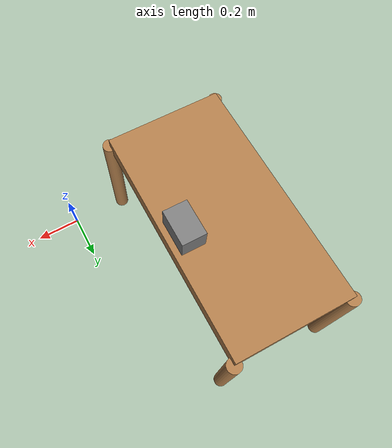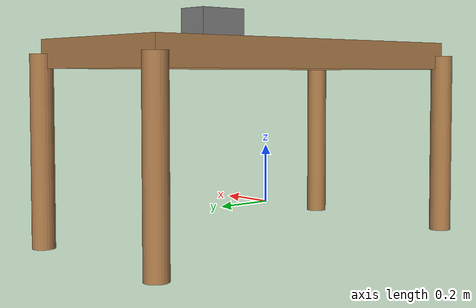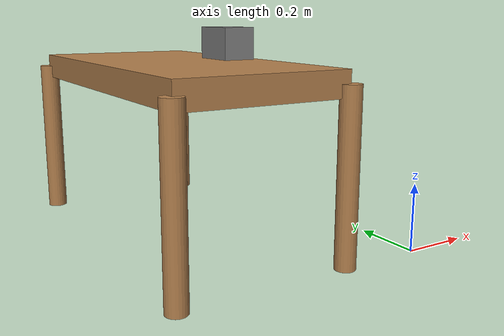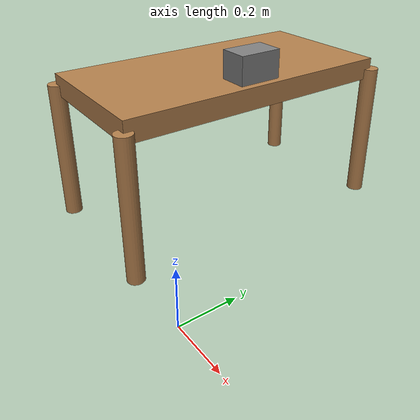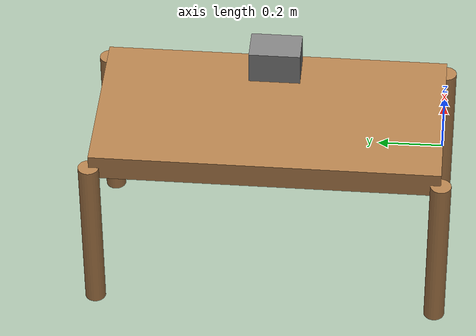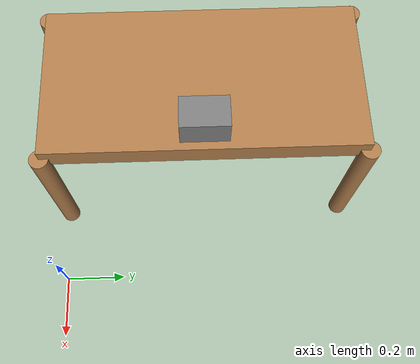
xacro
<?xml version="1.0" ?>
<robot name="camera" xmlns:xacro="http://wiki.ros.org/xacro">

    <link name="world" />

    <xacro:include filename="$(find camera_zoom_ros)/urdf/resources/calc_inertial.xacro"/>
    <xacro:include filename="$(find camera_zoom_ros)/urdf/resources/table.xacro"/>

    <joint name="camera_joint" type="fixed">
        <origin rpy="0 0 0" xyz="-0.325 0.5 0.585"/>
        <parent link="world"/>
        <child link="camera"/>
    </joint>

    <link name="camera">
        <collision>
            <origin rpy="0 0 0" xyz="0 0 0"/>
            <geometry>
                <box size="0.1 0.15 0.1"/>
            </geometry>
        </collision>
        <visual>
            <origin rpy="0 0 0" xyz="0 0 0"/>
            <geometry>
                <box size="0.1 0.15 0.1"/>
            </geometry>
            <material name="grey">
                <color rgba="0.5 0.5 0.5 1"/>
            </material>
        </visual>
        <inertial>
            <origin rpy="0 0 0" xyz="0 0 0"/>
            <mass value="0.1"/>
            <inertia ixx="0.0001" ixy="0.0" ixz="0.0" iyy="0.0001" iyz="0.0" izz="0.0001"/>
        </inertial>
    </link>

    <joint name="camera_optical_joint" type="fixed">
        <origin rpy="0 0 0" xyz="0 0 0"/>
        <parent link="camera"/>
        <child link="camera_frame_optical"/>
    </joint>

    <link name="camera_frame_optical"/>

    <gazebo reference="camera">
        <material>Gazebo/Grey</material>
        <sensor name="camera1" type="camera">
            <visualize>true</visualize>
            <update_rate>20</update_rate>
            <camera>
                <horizontal_fov>1.2</horizontal_fov>
                <image>
                    <width>640</width>
                    <height>480</height>
                    <format>R8G8B8</format>
                </image>
                <clip>
                    <near>0.05</near>
                    <far>30</far>
                </clip>
            </camera>
            <plugin filename="libgazebo_ros_camera.so" name="camera_controller">
                <alwaysOn>true</alwaysOn>
                <updateRate>20.0</updateRate>
                <cameraName>camera1</cameraName>
                <imageTopicName>/camera1/image_raw</imageTopicName>
                <cameraInfoTopicName>/camera1/camera_info</cameraInfoTopicName>
                <frameName>camera_frame_optical</frameName>
            </plugin>
        </sensor>
    </gazebo>

</robot>

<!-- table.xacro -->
<robot xmlns:xacro="http://ros.org/wiki/xacro">

  <!-- Macro for table leg -->
  <xacro:macro name="table_leg" params="name x y z">
    <link name="${name}">
      <visual>
        <geometry>
          <cylinder radius="${x/2}" length="${z}"/>
        </geometry>
        <material name="wood"/>
      </visual>
      <collision>
        <geometry>
          <cylinder radius="${x/2}" length="${z}"/>
        </geometry>
      </collision>
      <xacro:inertial_cylinder mass="0.1" length="${z}" radius="${x/2}">
        <origin xyz="0 0 0" rpy="0 0 0"/>
      </xacro:inertial_cylinder>
    </link>

    <gazebo reference="${name}">
      <material>Gazebo/Gray</material>
    </gazebo>
  </xacro:macro>

  <!-- Macro for table top -->
  <xacro:macro name="table_top" params="name length width height">
    <link name="${name}">
      <visual>
        <geometry>
          <box size="${length} ${width} ${height}"/>
        </geometry>
        <material name="wood"/>
      </visual>
      <collision>
        <geometry>
          <box size="${length} ${width} ${height}"/>
        </geometry>
      </collision>
      <xacro:inertial_box mass="0.1" x="${length}" y="${width}" z="${height}">
        <origin xyz="0 0 0" rpy="0 0 0"/>
      </xacro:inertial_box>
    </link>

    <gazebo reference="${name}">
      <material>Gazebo/Wood</material>
    </gazebo>
  </xacro:macro>

  <!-- Macro for table complete -->
  <xacro:macro name="table" params="name_table top_length top_width top_height leg_radius leg_height pos_x pos_y rot_z">
    <!-- Superficie of table -->
    <xacro:table_top name="${name_table}_table_top" length="${top_length}" width="${top_width}" height="${top_height}"/>

    <!-- Table legs -->
    <xacro:table_leg name="${name_table}_leg1" x="${leg_radius}" y="${leg_radius}" z="${leg_height}"/>
    <xacro:table_leg name="${name_table}_leg2" x="${leg_radius}" y="${leg_radius}" z="${leg_height}"/>
    <xacro:table_leg name="${name_table}_leg3" x="${leg_radius}" y="${leg_radius}" z="${leg_height}"/>
    <xacro:table_leg name="${name_table}_leg4" x="${leg_radius}" y="${leg_radius}" z="${leg_height}"/>

    <joint name="${name_table}_joint0" type="fixed">
      <parent link="world"/>
      <child link="${name_table}_table_top"/>
      <origin xyz="${pos_x} ${pos_y} ${leg_height}" rpy="0 0 ${rot_z}"/>
    </joint>

    <!-- Joints between table top and table legs -->
    <joint name="${name_table}_joint1" type="fixed">
      <parent link="${name_table}_table_top"/>
      <child link="${name_table}_leg1"/>
      <origin xyz="${top_length/2} ${top_width/2} -${leg_height/2}"/>
    </joint>

    <joint name="${name_table}_joint2" type="fixed">
      <parent link="${name_table}_table_top"/>
      <child link="${name_table}_leg2"/>
      <origin xyz="${top_length/2} -${top_width/2} -${leg_height/2}"/>
    </joint>

    <joint name="${name_table}_joint3" type="fixed">
      <parent link="${name_table}_table_top"/>
      <child link="${name_table}_leg3"/>
      <origin xyz="-${top_length/2} ${top_width/2} -${leg_height/2}"/>
    </joint>

    <joint name="${name_table}_joint4" type="fixed">
      <parent link="${name_table}_table_top"/>
      <child link="${name_table}_leg4"/>
      <origin xyz="-${top_length/2} -${top_width/2} -${leg_height/2}"/>
    </joint>

  </xacro:macro>

  <xacro:table name_table="table" top_length="1.0" top_width="0.5" top_height="0.075" leg_radius="0.06" leg_height="0.5" pos_x="-0.5" pos_y="0.5" rot_z="1.5708"/>

</robot>
